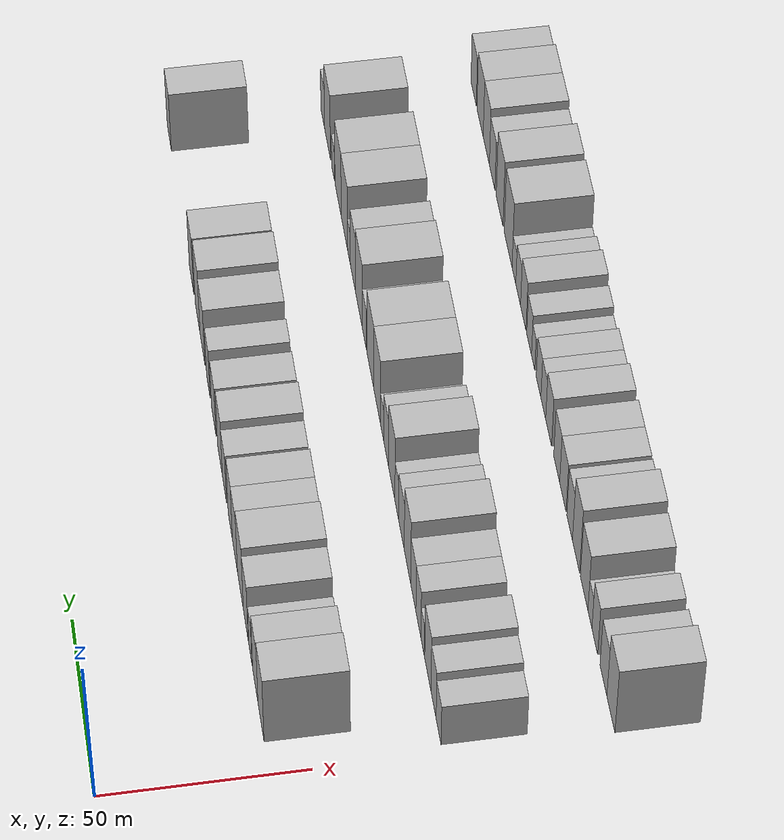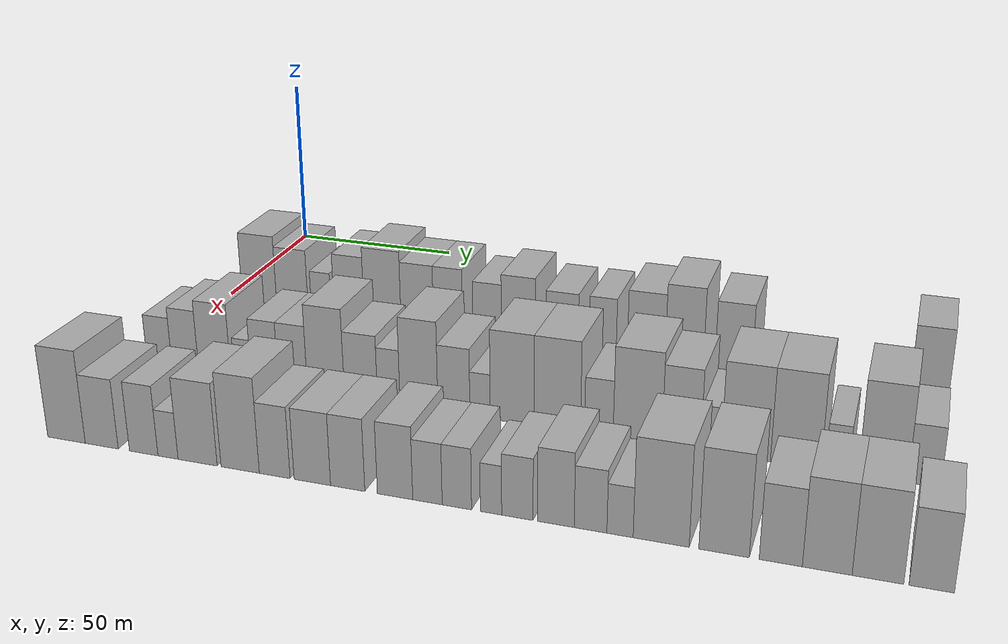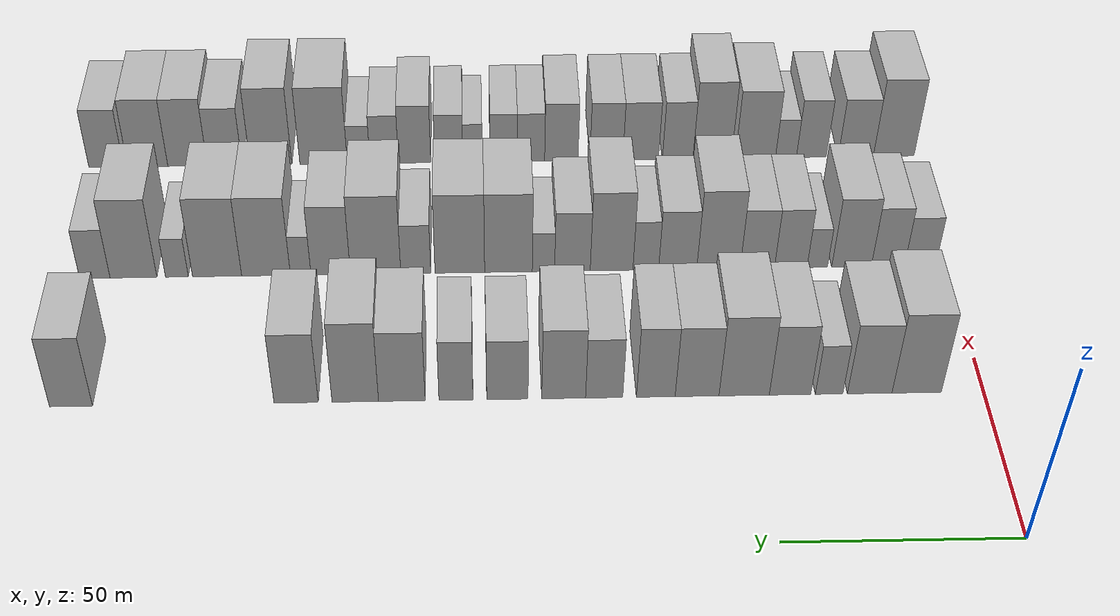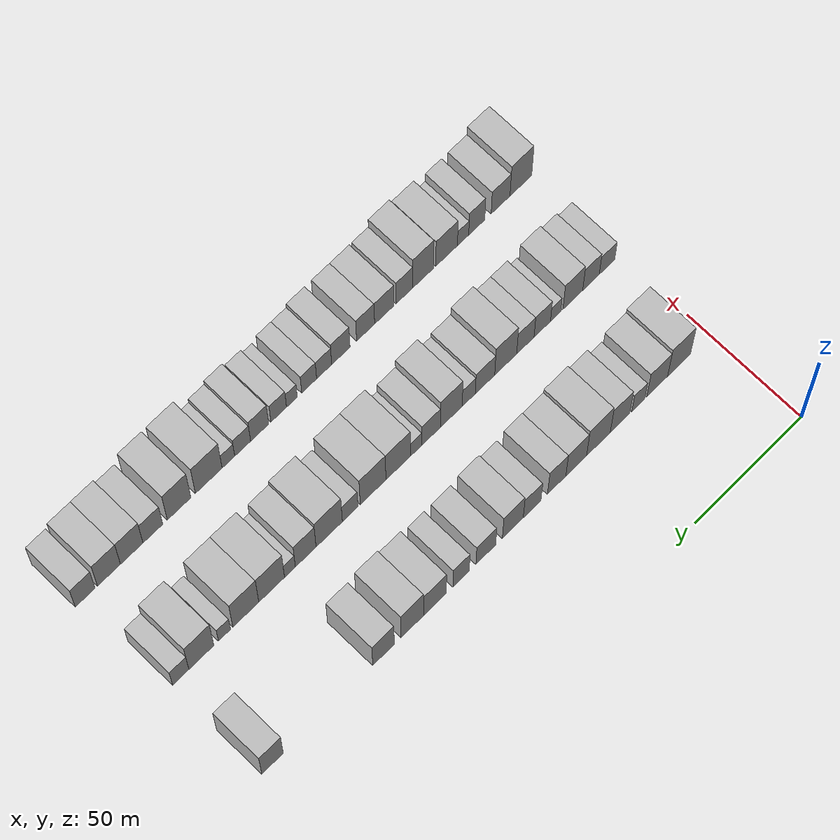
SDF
<sdf version="1.6">
 <world name="default">
  <model name="building_42">
   <static>1</static>
   <pose>50.0000 14.6597 0 0.000000 0.000000 0.000000</pose>
   <link name="link">
    <pose>0 0 12.00 0 0 0</pose>
    <collision name="collision"><geometry><box><size>20.0000 10.8217 24.0000</size></box></geometry></collision>
    <visual name="visual">
     <cast_shadows>0</cast_shadows>
     <geometry><box><size>20.0000 10.8217 24.0000</size></box></geometry>
     <material>
      <script>
       <uri>model://HANNAS_wall/materials/scripts</uri>
       <uri>model://HANNAS_wall/materials/textures</uri>
       <name>vrc/HANNAS_wall</name>
      </script>
     </material>
    </visual>
   </link>
  </model>
  <model name="building_43">
   <static>1</static>
   <pose>50.0000 24.9579 0 0.000000 0.000000 0.000000</pose>
   <link name="link">
    <pose>0 0 10.50 0 0 0</pose>
    <collision name="collision"><geometry><box><size>20.0000 9.7747 21.0000</size></box></geometry></collision>
    <visual name="visual">
     <cast_shadows>0</cast_shadows>
     <geometry><box><size>20.0000 9.7747 21.0000</size></box></geometry>
     <material>
      <script>
       <uri>model://HANNAS_wall/materials/scripts</uri>
       <uri>model://HANNAS_wall/materials/textures</uri>
       <name>vrc/HANNAS_wall</name>
      </script>
     </material>
    </visual>
   </link>
  </model>
  <model name="building_44">
   <static>1</static>
   <pose>50.0000 33.8572 0 0.000000 0.000000 0.000000</pose>
   <link name="link">
    <pose>0 0 7.50 0 0 0</pose>
    <collision name="collision"><geometry><box><size>20.0000 6.0239 15.0000</size></box></geometry></collision>
    <visual name="visual">
     <cast_shadows>0</cast_shadows>
     <geometry><box><size>20.0000 6.0239 15.0000</size></box></geometry>
     <material>
      <script>
       <uri>model://HANNAS_wall/materials/scripts</uri>
       <uri>model://HANNAS_wall/materials/textures</uri>
       <name>vrc/HANNAS_wall</name>
      </script>
     </material>
    </visual>
   </link>
  </model>
  <model name="building_45">
   <static>1</static>
   <pose>50.0000 42.4063 0 0.000000 0.000000 0.000000</pose>
   <link name="link">
    <pose>0 0 10.50 0 0 0</pose>
    <collision name="collision"><geometry><box><size>20.0000 9.0743 21.0000</size></box></geometry></collision>
    <visual name="visual">
     <cast_shadows>0</cast_shadows>
     <geometry><box><size>20.0000 9.0743 21.0000</size></box></geometry>
     <material>
      <script>
       <uri>model://HANNAS_wall/materials/scripts</uri>
       <uri>model://HANNAS_wall/materials/textures</uri>
       <name>vrc/HANNAS_wall</name>
      </script>
     </material>
    </visual>
   </link>
  </model>
  <model name="building_46">
   <static>1</static>
   <pose>50.0000 52.4457 0 0.000000 0.000000 0.000000</pose>
   <link name="link">
    <pose>0 0 12.00 0 0 0</pose>
    <collision name="collision"><geometry><box><size>20.0000 11.0043 24.0000</size></box></geometry></collision>
    <visual name="visual">
     <cast_shadows>0</cast_shadows>
     <geometry><box><size>20.0000 11.0043 24.0000</size></box></geometry>
     <material>
      <script>
       <uri>model://HANNAS_wall/materials/scripts</uri>
       <uri>model://HANNAS_wall/materials/textures</uri>
       <name>vrc/HANNAS_wall</name>
      </script>
     </material>
    </visual>
   </link>
  </model>
  <model name="building_47">
   <static>1</static>
   <pose>50.0000 62.7389 0 0.000000 0.000000 0.000000</pose>
   <link name="link">
    <pose>0 0 10.50 0 0 0</pose>
    <collision name="collision"><geometry><box><size>20.0000 9.5821 21.0000</size></box></geometry></collision>
    <visual name="visual">
     <cast_shadows>0</cast_shadows>
     <geometry><box><size>20.0000 9.5821 21.0000</size></box></geometry>
     <material>
      <script>
       <uri>model://HANNAS_wall/materials/scripts</uri>
       <uri>model://HANNAS_wall/materials/textures</uri>
       <name>vrc/HANNAS_wall</name>
      </script>
     </material>
    </visual>
   </link>
  </model>
  <model name="building_48">
   <static>1</static>
   <pose>50.0000 71.7521 0 0.000000 0.000000 0.000000</pose>
   <link name="link">
    <pose>0 0 10.50 0 0 0</pose>
    <collision name="collision"><geometry><box><size>20.0000 8.4444 21.0000</size></box></geometry></collision>
    <visual name="visual">
     <cast_shadows>0</cast_shadows>
     <geometry><box><size>20.0000 8.4444 21.0000</size></box></geometry>
     <material>
      <script>
       <uri>model://HANNAS_wall/materials/scripts</uri>
       <uri>model://HANNAS_wall/materials/textures</uri>
       <name>vrc/HANNAS_wall</name>
      </script>
     </material>
    </visual>
   </link>
  </model>
  <model name="building_49">
   <static>1</static>
   <pose>50.0000 83.0258 0 0.000000 0.000000 0.000000</pose>
   <link name="link">
    <pose>0 0 9.00 0 0 0</pose>
    <collision name="collision"><geometry><box><size>20.0000 8.1031 18.0000</size></box></geometry></collision>
    <visual name="visual">
     <cast_shadows>0</cast_shadows>
     <geometry><box><size>20.0000 8.1031 18.0000</size></box></geometry>
     <material>
      <script>
       <uri>model://HANNAS_wall/materials/scripts</uri>
       <uri>model://HANNAS_wall/materials/textures</uri>
       <name>vrc/HANNAS_wall</name>
      </script>
     </material>
    </visual>
   </link>
  </model>
  <model name="building_50">
   <static>1</static>
   <pose>50.0000 91.8477 0 0.000000 0.000000 0.000000</pose>
   <link name="link">
    <pose>0 0 10.50 0 0 0</pose>
    <collision name="collision"><geometry><box><size>20.0000 9.5407 21.0000</size></box></geometry></collision>
    <visual name="visual">
     <cast_shadows>0</cast_shadows>
     <geometry><box><size>20.0000 9.5407 21.0000</size></box></geometry>
     <material>
      <script>
       <uri>model://HANNAS_wall/materials/scripts</uri>
       <uri>model://HANNAS_wall/materials/textures</uri>
       <name>vrc/HANNAS_wall</name>
      </script>
     </material>
    </visual>
   </link>
  </model>
  <model name="building_51">
   <static>1</static>
   <pose>50.0000 104.1071 0 0.000000 0.000000 0.000000</pose>
   <link name="link">
    <pose>0 0 9.00 0 0 0</pose>
    <collision name="collision"><geometry><box><size>20.0000 8.9781 18.0000</size></box></geometry></collision>
    <visual name="visual">
     <cast_shadows>0</cast_shadows>
     <geometry><box><size>20.0000 8.9781 18.0000</size></box></geometry>
     <material>
      <script>
       <uri>model://HANNAS_wall/materials/scripts</uri>
       <uri>model://HANNAS_wall/materials/textures</uri>
       <name>vrc/HANNAS_wall</name>
      </script>
     </material>
    </visual>
   </link>
  </model>
  <model name="building_52">
   <static>1</static>
   <pose>50.0000 115.2909 0 0.000000 0.000000 0.000000</pose>
   <link name="link">
    <pose>0 0 9.00 0 0 0</pose>
    <collision name="collision"><geometry><box><size>20.0000 7.3895 18.0000</size></box></geometry></collision>
    <visual name="visual">
     <cast_shadows>0</cast_shadows>
     <geometry><box><size>20.0000 7.3895 18.0000</size></box></geometry>
     <material>
      <script>
       <uri>model://HANNAS_wall/materials/scripts</uri>
       <uri>model://HANNAS_wall/materials/textures</uri>
       <name>vrc/HANNAS_wall</name>
      </script>
     </material>
    </visual>
   </link>
  </model>
  <model name="building_53">
   <static>1</static>
   <pose>50.0000 127.0542 0 0.000000 0.000000 0.000000</pose>
   <link name="link">
    <pose>0 0 10.50 0 0 0</pose>
    <collision name="collision"><geometry><box><size>20.0000 10.1372 21.0000</size></box></geometry></collision>
    <visual name="visual">
     <cast_shadows>0</cast_shadows>
     <geometry><box><size>20.0000 10.1372 21.0000</size></box></geometry>
     <material>
      <script>
       <uri>model://HANNAS_wall/materials/scripts</uri>
       <uri>model://HANNAS_wall/materials/textures</uri>
       <name>vrc/HANNAS_wall</name>
      </script>
     </material>
    </visual>
   </link>
  </model>
  <model name="building_54">
   <static>1</static>
   <pose>50.0000 137.1678 0 0.000000 0.000000 0.000000</pose>
   <link name="link">
    <pose>0 0 12.00 0 0 0</pose>
    <collision name="collision"><geometry><box><size>20.0000 10.0899 24.0000</size></box></geometry></collision>
    <visual name="visual">
     <cast_shadows>0</cast_shadows>
     <geometry><box><size>20.0000 10.0899 24.0000</size></box></geometry>
     <material>
      <script>
       <uri>model://HANNAS_wall/materials/scripts</uri>
       <uri>model://HANNAS_wall/materials/textures</uri>
       <name>vrc/HANNAS_wall</name>
      </script>
     </material>
    </visual>
   </link>
  </model>
  <model name="building_55">
   <static>1</static>
   <pose>50.0000 150.0055 0 0.000000 0.000000 0.000000</pose>
   <link name="link">
    <pose>0 0 10.50 0 0 0</pose>
    <collision name="collision"><geometry><box><size>20.0000 9.5855 21.0000</size></box></geometry></collision>
    <visual name="visual">
     <cast_shadows>0</cast_shadows>
     <geometry><box><size>20.0000 9.5855 21.0000</size></box></geometry>
     <material>
      <script>
       <uri>model://HANNAS_wall/materials/scripts</uri>
       <uri>model://HANNAS_wall/materials/textures</uri>
       <name>vrc/HANNAS_wall</name>
      </script>
     </material>
    </visual>
   </link>
  </model>
  <model name="building_56">
   <static>1</static>
   <pose>50.0000 198.7421 0 0.000000 0.000000 0.000000</pose>
   <link name="link">
    <pose>0 0 10.50 0 0 0</pose>
    <collision name="collision"><geometry><box><size>20.0000 9.2959 21.0000</size></box></geometry></collision>
    <visual name="visual">
     <cast_shadows>0</cast_shadows>
     <geometry><box><size>20.0000 9.2959 21.0000</size></box></geometry>
     <material>
      <script>
       <uri>model://HANNAS_wall/materials/scripts</uri>
       <uri>model://HANNAS_wall/materials/textures</uri>
       <name>vrc/HANNAS_wall</name>
      </script>
     </material>
    </visual>
   </link>
  </model>
  <model name="building_117">
   <static>1</static>
   <pose>90.0000 6.2179 0 0.000000 0.000000 0.000000</pose>
   <link name="link">
    <pose>0 0 7.50 0 0 0</pose>
    <collision name="collision"><geometry><box><size>20.0000 7.3469 15.0000</size></box></geometry></collision>
    <visual name="visual">
     <cast_shadows>0</cast_shadows>
     <geometry><box><size>20.0000 7.3469 15.0000</size></box></geometry>
     <material>
      <script>
       <uri>model://HANNAS_wall/materials/scripts</uri>
       <uri>model://HANNAS_wall/materials/textures</uri>
       <name>vrc/HANNAS_wall</name>
      </script>
     </material>
    </visual>
   </link>
  </model>
  <model name="building_118">
   <static>1</static>
   <pose>90.0000 13.7996 0 0.000000 0.000000 0.000000</pose>
   <link name="link">
    <pose>0 0 9.00 0 0 0</pose>
    <collision name="collision"><geometry><box><size>20.0000 7.8166 18.0000</size></box></geometry></collision>
    <visual name="visual">
     <cast_shadows>0</cast_shadows>
     <geometry><box><size>20.0000 7.8166 18.0000</size></box></geometry>
     <material>
      <script>
       <uri>model://HANNAS_wall/materials/scripts</uri>
       <uri>model://HANNAS_wall/materials/textures</uri>
       <name>vrc/HANNAS_wall</name>
      </script>
     </material>
    </visual>
   </link>
  </model>
  <model name="building_119">
   <static>1</static>
   <pose>90.0000 22.3763 0 0.000000 0.000000 0.000000</pose>
   <link name="link">
    <pose>0 0 10.50 0 0 0</pose>
    <collision name="collision"><geometry><box><size>20.0000 9.3366 21.0000</size></box></geometry></collision>
    <visual name="visual">
     <cast_shadows>0</cast_shadows>
     <geometry><box><size>20.0000 9.3366 21.0000</size></box></geometry>
     <material>
      <script>
       <uri>model://HANNAS_wall/materials/scripts</uri>
       <uri>model://HANNAS_wall/materials/textures</uri>
       <name>vrc/HANNAS_wall</name>
      </script>
     </material>
    </visual>
   </link>
  </model>
  <model name="building_120">
   <static>1</static>
   <pose>90.0000 30.4526 0 0.000000 0.000000 0.000000</pose>
   <link name="link">
    <pose>0 0 6.00 0 0 0</pose>
    <collision name="collision"><geometry><box><size>20.0000 4.8161 12.0000</size></box></geometry></collision>
    <visual name="visual">
     <cast_shadows>0</cast_shadows>
     <geometry><box><size>20.0000 4.8161 12.0000</size></box></geometry>
     <material>
      <script>
       <uri>model://HANNAS_wall/materials/scripts</uri>
       <uri>model://HANNAS_wall/materials/textures</uri>
       <name>vrc/HANNAS_wall</name>
      </script>
     </material>
    </visual>
   </link>
  </model>
  <model name="building_121">
   <static>1</static>
   <pose>90.0000 36.6911 0 0.000000 0.000000 0.000000</pose>
   <link name="link">
    <pose>0 0 9.00 0 0 0</pose>
    <collision name="collision"><geometry><box><size>20.0000 7.6609 18.0000</size></box></geometry></collision>
    <visual name="visual">
     <cast_shadows>0</cast_shadows>
     <geometry><box><size>20.0000 7.6609 18.0000</size></box></geometry>
     <material>
      <script>
       <uri>model://HANNAS_wall/materials/scripts</uri>
       <uri>model://HANNAS_wall/materials/textures</uri>
       <name>vrc/HANNAS_wall</name>
      </script>
     </material>
    </visual>
   </link>
  </model>
  <model name="building_122">
   <static>1</static>
   <pose>90.0000 44.5673 0 0.000000 0.000000 0.000000</pose>
   <link name="link">
    <pose>0 0 9.00 0 0 0</pose>
    <collision name="collision"><geometry><box><size>20.0000 8.0916 18.0000</size></box></geometry></collision>
    <visual name="visual">
     <cast_shadows>0</cast_shadows>
     <geometry><box><size>20.0000 8.0916 18.0000</size></box></geometry>
     <material>
      <script>
       <uri>model://HANNAS_wall/materials/scripts</uri>
       <uri>model://HANNAS_wall/materials/textures</uri>
       <name>vrc/HANNAS_wall</name>
      </script>
     </material>
    </visual>
   </link>
  </model>
  <model name="building_123">
   <static>1</static>
   <pose>90.0000 53.7127 0 0.000000 0.000000 0.000000</pose>
   <link name="link">
    <pose>0 0 12.00 0 0 0</pose>
    <collision name="collision"><geometry><box><size>20.0000 10.1992 24.0000</size></box></geometry></collision>
    <visual name="visual">
     <cast_shadows>0</cast_shadows>
     <geometry><box><size>20.0000 10.1992 24.0000</size></box></geometry>
     <material>
      <script>
       <uri>model://HANNAS_wall/materials/scripts</uri>
       <uri>model://HANNAS_wall/materials/textures</uri>
       <name>vrc/HANNAS_wall</name>
      </script>
     </material>
    </visual>
   </link>
  </model>
  <model name="building_124">
   <static>1</static>
   <pose>90.0000 63.2934 0 0.000000 0.000000 0.000000</pose>
   <link name="link">
    <pose>0 0 9.00 0 0 0</pose>
    <collision name="collision"><geometry><box><size>20.0000 8.9622 18.0000</size></box></geometry></collision>
    <visual name="visual">
     <cast_shadows>0</cast_shadows>
     <geometry><box><size>20.0000 8.9622 18.0000</size></box></geometry>
     <material>
      <script>
       <uri>model://HANNAS_wall/materials/scripts</uri>
       <uri>model://HANNAS_wall/materials/textures</uri>
       <name>vrc/HANNAS_wall</name>
      </script>
     </material>
    </visual>
   </link>
  </model>
  <model name="building_125">
   <static>1</static>
   <pose>90.0000 70.7899 0 0.000000 0.000000 0.000000</pose>
   <link name="link">
    <pose>0 0 7.50 0 0 0</pose>
    <collision name="collision"><geometry><box><size>20.0000 6.0307 15.0000</size></box></geometry></collision>
    <visual name="visual">
     <cast_shadows>0</cast_shadows>
     <geometry><box><size>20.0000 6.0307 15.0000</size></box></geometry>
     <material>
      <script>
       <uri>model://HANNAS_wall/materials/scripts</uri>
       <uri>model://HANNAS_wall/materials/textures</uri>
       <name>vrc/HANNAS_wall</name>
      </script>
     </material>
    </visual>
   </link>
  </model>
  <model name="building_126">
   <static>1</static>
   <pose>90.0000 78.8152 0 0.000000 0.000000 0.000000</pose>
   <link name="link">
    <pose>0 0 12.00 0 0 0</pose>
    <collision name="collision"><geometry><box><size>20.0000 10.0199 24.0000</size></box></geometry></collision>
    <visual name="visual">
     <cast_shadows>0</cast_shadows>
     <geometry><box><size>20.0000 10.0199 24.0000</size></box></geometry>
     <material>
      <script>
       <uri>model://HANNAS_wall/materials/scripts</uri>
       <uri>model://HANNAS_wall/materials/textures</uri>
       <name>vrc/HANNAS_wall</name>
      </script>
     </material>
    </visual>
   </link>
  </model>
  <model name="building_127">
   <static>1</static>
   <pose>90.0000 88.0000 0 0.000000 0.000000 0.000000</pose>
   <link name="link">
    <pose>0 0 9.00 0 0 0</pose>
    <collision name="collision"><geometry><box><size>20.0000 8.3497 18.0000</size></box></geometry></collision>
    <visual name="visual">
     <cast_shadows>0</cast_shadows>
     <geometry><box><size>20.0000 8.3497 18.0000</size></box></geometry>
     <material>
      <script>
       <uri>model://HANNAS_wall/materials/scripts</uri>
       <uri>model://HANNAS_wall/materials/textures</uri>
       <name>vrc/HANNAS_wall</name>
      </script>
     </material>
    </visual>
   </link>
  </model>
  <model name="building_128">
   <static>1</static>
   <pose>90.0000 94.7906 0 0.000000 0.000000 0.000000</pose>
   <link name="link">
    <pose>0 0 6.00 0 0 0</pose>
    <collision name="collision"><geometry><box><size>20.0000 5.2316 12.0000</size></box></geometry></collision>
    <visual name="visual">
     <cast_shadows>0</cast_shadows>
     <geometry><box><size>20.0000 5.2316 12.0000</size></box></geometry>
     <material>
      <script>
       <uri>model://HANNAS_wall/materials/scripts</uri>
       <uri>model://HANNAS_wall/materials/textures</uri>
       <name>vrc/HANNAS_wall</name>
      </script>
     </material>
    </visual>
   </link>
  </model>
  <model name="building_129">
   <static>1</static>
   <pose>90.0000 102.9821 0 0.000000 0.000000 0.000000</pose>
   <link name="link">
    <pose>0 0 12.00 0 0 0</pose>
    <collision name="collision"><geometry><box><size>20.0000 11.1512 24.0000</size></box></geometry></collision>
    <visual name="visual">
     <cast_shadows>0</cast_shadows>
     <geometry><box><size>20.0000 11.1512 24.0000</size></box></geometry>
     <material>
      <script>
       <uri>model://HANNAS_wall/materials/scripts</uri>
       <uri>model://HANNAS_wall/materials/textures</uri>
       <name>vrc/HANNAS_wall</name>
      </script>
     </material>
    </visual>
   </link>
  </model>
  <model name="building_130">
   <static>1</static>
   <pose>90.0000 114.3607 0 0.000000 0.000000 0.000000</pose>
   <link name="link">
    <pose>0 0 12.00 0 0 0</pose>
    <collision name="collision"><geometry><box><size>20.0000 11.6062 24.0000</size></box></geometry></collision>
    <visual name="visual">
     <cast_shadows>0</cast_shadows>
     <geometry><box><size>20.0000 11.6062 24.0000</size></box></geometry>
     <material>
      <script>
       <uri>model://HANNAS_wall/materials/scripts</uri>
       <uri>model://HANNAS_wall/materials/textures</uri>
       <name>vrc/HANNAS_wall</name>
      </script>
     </material>
    </visual>
   </link>
  </model>
  <model name="building_131">
   <static>1</static>
   <pose>90.0000 124.6672 0 0.000000 0.000000 0.000000</pose>
   <link name="link">
    <pose>0 0 7.50 0 0 0</pose>
    <collision name="collision"><geometry><box><size>20.0000 7.0067 15.0000</size></box></geometry></collision>
    <visual name="visual">
     <cast_shadows>0</cast_shadows>
     <geometry><box><size>20.0000 7.0067 15.0000</size></box></geometry>
     <material>
      <script>
       <uri>model://HANNAS_wall/materials/scripts</uri>
       <uri>model://HANNAS_wall/materials/textures</uri>
       <name>vrc/HANNAS_wall</name>
      </script>
     </material>
    </visual>
   </link>
  </model>
  <model name="building_132">
   <static>1</static>
   <pose>90.0000 134.0580 0 0.000000 0.000000 0.000000</pose>
   <link name="link">
    <pose>0 0 12.00 0 0 0</pose>
    <collision name="collision"><geometry><box><size>20.0000 11.7749 24.0000</size></box></geometry></collision>
    <visual name="visual">
     <cast_shadows>0</cast_shadows>
     <geometry><box><size>20.0000 11.7749 24.0000</size></box></geometry>
     <material>
      <script>
       <uri>model://HANNAS_wall/materials/scripts</uri>
       <uri>model://HANNAS_wall/materials/textures</uri>
       <name>vrc/HANNAS_wall</name>
      </script>
     </material>
    </visual>
   </link>
  </model>
  <model name="building_133">
   <static>1</static>
   <pose>90.0000 144.5445 0 0.000000 0.000000 0.000000</pose>
   <link name="link">
    <pose>0 0 10.50 0 0 0</pose>
    <collision name="collision"><geometry><box><size>20.0000 9.1982 21.0000</size></box></geometry></collision>
    <visual name="visual">
     <cast_shadows>0</cast_shadows>
     <geometry><box><size>20.0000 9.1982 21.0000</size></box></geometry>
     <material>
      <script>
       <uri>model://HANNAS_wall/materials/scripts</uri>
       <uri>model://HANNAS_wall/materials/textures</uri>
       <name>vrc/HANNAS_wall</name>
      </script>
     </material>
    </visual>
   </link>
  </model>
  <model name="building_134">
   <static>1</static>
   <pose>90.0000 151.5437 0 0.000000 0.000000 0.000000</pose>
   <link name="link">
    <pose>0 0 6.00 0 0 0</pose>
    <collision name="collision"><geometry><box><size>20.0000 4.8003 12.0000</size></box></geometry></collision>
    <visual name="visual">
     <cast_shadows>0</cast_shadows>
     <geometry><box><size>20.0000 4.8003 12.0000</size></box></geometry>
     <material>
      <script>
       <uri>model://HANNAS_wall/materials/scripts</uri>
       <uri>model://HANNAS_wall/materials/textures</uri>
       <name>vrc/HANNAS_wall</name>
      </script>
     </material>
    </visual>
   </link>
  </model>
  <model name="building_135">
   <static>1</static>
   <pose>90.0000 159.6346 0 0.000000 0.000000 0.000000</pose>
   <link name="link">
    <pose>0 0 12.00 0 0 0</pose>
    <collision name="collision"><geometry><box><size>20.0000 11.3816 24.0000</size></box></geometry></collision>
    <visual name="visual">
     <cast_shadows>0</cast_shadows>
     <geometry><box><size>20.0000 11.3816 24.0000</size></box></geometry>
     <material>
      <script>
       <uri>model://HANNAS_wall/materials/scripts</uri>
       <uri>model://HANNAS_wall/materials/textures</uri>
       <name>vrc/HANNAS_wall</name>
      </script>
     </material>
    </visual>
   </link>
  </model>
  <model name="building_136">
   <static>1</static>
   <pose>90.0000 171.0382 0 0.000000 0.000000 0.000000</pose>
   <link name="link">
    <pose>0 0 12.00 0 0 0</pose>
    <collision name="collision"><geometry><box><size>20.0000 11.4255 24.0000</size></box></geometry></collision>
    <visual name="visual">
     <cast_shadows>0</cast_shadows>
     <geometry><box><size>20.0000 11.4255 24.0000</size></box></geometry>
     <material>
      <script>
       <uri>model://HANNAS_wall/materials/scripts</uri>
       <uri>model://HANNAS_wall/materials/textures</uri>
       <name>vrc/HANNAS_wall</name>
      </script>
     </material>
    </visual>
   </link>
  </model>
  <model name="building_137">
   <static>1</static>
   <pose>90.0000 180.4086 0 0.000000 0.000000 0.000000</pose>
   <link name="link">
    <pose>0 0 6.00 0 0 0</pose>
    <collision name="collision"><geometry><box><size>20.0000 5.3153 12.0000</size></box></geometry></collision>
    <visual name="visual">
     <cast_shadows>0</cast_shadows>
     <geometry><box><size>20.0000 5.3153 12.0000</size></box></geometry>
     <material>
      <script>
       <uri>model://HANNAS_wall/materials/scripts</uri>
       <uri>model://HANNAS_wall/materials/textures</uri>
       <name>vrc/HANNAS_wall</name>
      </script>
     </material>
    </visual>
   </link>
  </model>
  <model name="building_138">
   <static>1</static>
   <pose>90.0000 190.5158 0 0.000000 0.000000 0.000000</pose>
   <link name="link">
    <pose>0 0 12.00 0 0 0</pose>
    <collision name="collision"><geometry><box><size>20.0000 10.8992 24.0000</size></box></geometry></collision>
    <visual name="visual">
     <cast_shadows>0</cast_shadows>
     <geometry><box><size>20.0000 10.8992 24.0000</size></box></geometry>
     <material>
      <script>
       <uri>model://HANNAS_wall/materials/scripts</uri>
       <uri>model://HANNAS_wall/materials/textures</uri>
       <name>vrc/HANNAS_wall</name>
      </script>
     </material>
    </visual>
   </link>
  </model>
  <model name="building_139">
   <static>1</static>
   <pose>90.0000 199.5077 0 0.000000 0.000000 0.000000</pose>
   <link name="link">
    <pose>0 0 7.50 0 0 0</pose>
    <collision name="collision"><geometry><box><size>20.0000 7.0845 15.0000</size></box></geometry></collision>
    <visual name="visual">
     <cast_shadows>0</cast_shadows>
     <geometry><box><size>20.0000 7.0845 15.0000</size></box></geometry>
     <material>
      <script>
       <uri>model://HANNAS_wall/materials/scripts</uri>
       <uri>model://HANNAS_wall/materials/textures</uri>
       <name>vrc/HANNAS_wall</name>
      </script>
     </material>
    </visual>
   </link>
  </model>
  <model name="building_203">
   <static>1</static>
   <pose>130.0000 5.1606 0 0.000000 0.000000 0.000000</pose>
   <link name="link">
    <pose>0 0 12.00 0 0 0</pose>
    <collision name="collision"><geometry><box><size>20.0000 10.2754 24.0000</size></box></geometry></collision>
    <visual name="visual">
     <cast_shadows>0</cast_shadows>
     <geometry><box><size>20.0000 10.2754 24.0000</size></box></geometry>
     <material>
      <script>
       <uri>model://HANNAS_wall/materials/scripts</uri>
       <uri>model://HANNAS_wall/materials/textures</uri>
       <name>vrc/HANNAS_wall</name>
      </script>
     </material>
    </visual>
   </link>
  </model>
  <model name="building_204">
   <static>1</static>
   <pose>130.0000 14.7429 0 0.000000 0.000000 0.000000</pose>
   <link name="link">
    <pose>0 0 9.00 0 0 0</pose>
    <collision name="collision"><geometry><box><size>20.0000 8.8893 18.0000</size></box></geometry></collision>
    <visual name="visual">
     <cast_shadows>0</cast_shadows>
     <geometry><box><size>20.0000 8.8893 18.0000</size></box></geometry>
     <material>
      <script>
       <uri>model://HANNAS_wall/materials/scripts</uri>
       <uri>model://HANNAS_wall/materials/textures</uri>
       <name>vrc/HANNAS_wall</name>
      </script>
     </material>
    </visual>
   </link>
  </model>
  <model name="building_205">
   <static>1</static>
   <pose>130.0000 25.9527 0 0.000000 0.000000 0.000000</pose>
   <link name="link">
    <pose>0 0 9.00 0 0 0</pose>
    <collision name="collision"><geometry><box><size>20.0000 7.5304 18.0000</size></box></geometry></collision>
    <visual name="visual">
     <cast_shadows>0</cast_shadows>
     <geometry><box><size>20.0000 7.5304 18.0000</size></box></geometry>
     <material>
      <script>
       <uri>model://HANNAS_wall/materials/scripts</uri>
       <uri>model://HANNAS_wall/materials/textures</uri>
       <name>vrc/HANNAS_wall</name>
      </script>
     </material>
    </visual>
   </link>
  </model>
  <model name="building_206">
   <static>1</static>
   <pose>130.0000 32.3491 0 0.000000 0.000000 0.000000</pose>
   <link name="link">
    <pose>0 0 6.00 0 0 0</pose>
    <collision name="collision"><geometry><box><size>20.0000 5.2622 12.0000</size></box></geometry></collision>
    <visual name="visual">
     <cast_shadows>0</cast_shadows>
     <geometry><box><size>20.0000 5.2622 12.0000</size></box></geometry>
     <material>
      <script>
       <uri>model://HANNAS_wall/materials/scripts</uri>
       <uri>model://HANNAS_wall/materials/textures</uri>
       <name>vrc/HANNAS_wall</name>
      </script>
     </material>
    </visual>
   </link>
  </model>
  <model name="building_207">
   <static>1</static>
   <pose>130.0000 40.0331 0 0.000000 0.000000 0.000000</pose>
   <link name="link">
    <pose>0 0 10.50 0 0 0</pose>
    <collision name="collision"><geometry><box><size>20.0000 10.1059 21.0000</size></box></geometry></collision>
    <visual name="visual">
     <cast_shadows>0</cast_shadows>
     <geometry><box><size>20.0000 10.1059 21.0000</size></box></geometry>
     <material>
      <script>
       <uri>model://HANNAS_wall/materials/scripts</uri>
       <uri>model://HANNAS_wall/materials/textures</uri>
       <name>vrc/HANNAS_wall</name>
      </script>
     </material>
    </visual>
   </link>
  </model>
  <model name="building_208">
   <static>1</static>
   <pose>130.0000 50.9304 0 0.000000 0.000000 0.000000</pose>
   <link name="link">
    <pose>0 0 12.00 0 0 0</pose>
    <collision name="collision"><geometry><box><size>20.0000 9.6887 24.0000</size></box></geometry></collision>
    <visual name="visual">
     <cast_shadows>0</cast_shadows>
     <geometry><box><size>20.0000 9.6887 24.0000</size></box></geometry>
     <material>
      <script>
       <uri>model://HANNAS_wall/materials/scripts</uri>
       <uri>model://HANNAS_wall/materials/textures</uri>
       <name>vrc/HANNAS_wall</name>
      </script>
     </material>
    </visual>
   </link>
  </model>
  <model name="building_209">
   <static>1</static>
   <pose>130.0000 59.6155 0 0.000000 0.000000 0.000000</pose>
   <link name="link">
    <pose>0 0 9.00 0 0 0</pose>
    <collision name="collision"><geometry><box><size>20.0000 7.6816 18.0000</size></box></geometry></collision>
    <visual name="visual">
     <cast_shadows>0</cast_shadows>
     <geometry><box><size>20.0000 7.6816 18.0000</size></box></geometry>
     <material>
      <script>
       <uri>model://HANNAS_wall/materials/scripts</uri>
       <uri>model://HANNAS_wall/materials/textures</uri>
       <name>vrc/HANNAS_wall</name>
      </script>
     </material>
    </visual>
   </link>
  </model>
  <model name="building_210">
   <static>1</static>
   <pose>130.0000 68.9196 0 0.000000 0.000000 0.000000</pose>
   <link name="link">
    <pose>0 0 9.00 0 0 0</pose>
    <collision name="collision"><geometry><box><size>20.0000 8.9265 18.0000</size></box></geometry></collision>
    <visual name="visual">
     <cast_shadows>0</cast_shadows>
     <geometry><box><size>20.0000 8.9265 18.0000</size></box></geometry>
     <material>
      <script>
       <uri>model://HANNAS_wall/materials/scripts</uri>
       <uri>model://HANNAS_wall/materials/textures</uri>
       <name>vrc/HANNAS_wall</name>
      </script>
     </material>
    </visual>
   </link>
  </model>
  <model name="building_211">
   <static>1</static>
   <pose>130.0000 77.5230 0 0.000000 0.000000 0.000000</pose>
   <link name="link">
    <pose>0 0 9.00 0 0 0</pose>
    <collision name="collision"><geometry><box><size>20.0000 8.2803 18.0000</size></box></geometry></collision>
    <visual name="visual">
     <cast_shadows>0</cast_shadows>
     <geometry><box><size>20.0000 8.2803 18.0000</size></box></geometry>
     <material>
      <script>
       <uri>model://HANNAS_wall/materials/scripts</uri>
       <uri>model://HANNAS_wall/materials/textures</uri>
       <name>vrc/HANNAS_wall</name>
      </script>
     </material>
    </visual>
   </link>
  </model>
  <model name="building_212">
   <static>1</static>
   <pose>130.0000 88.8473 0 0.000000 0.000000 0.000000</pose>
   <link name="link">
    <pose>0 0 9.00 0 0 0</pose>
    <collision name="collision"><geometry><box><size>20.0000 8.3682 18.0000</size></box></geometry></collision>
    <visual name="visual">
     <cast_shadows>0</cast_shadows>
     <geometry><box><size>20.0000 8.3682 18.0000</size></box></geometry>
     <material>
      <script>
       <uri>model://HANNAS_wall/materials/scripts</uri>
       <uri>model://HANNAS_wall/materials/textures</uri>
       <name>vrc/HANNAS_wall</name>
      </script>
     </material>
    </visual>
   </link>
  </model>
  <model name="building_213">
   <static>1</static>
   <pose>130.0000 96.4643 0 0.000000 0.000000 0.000000</pose>
   <link name="link">
    <pose>0 0 7.50 0 0 0</pose>
    <collision name="collision"><geometry><box><size>20.0000 6.8658 15.0000</size></box></geometry></collision>
    <visual name="visual">
     <cast_shadows>0</cast_shadows>
     <geometry><box><size>20.0000 6.8658 15.0000</size></box></geometry>
     <material>
      <script>
       <uri>model://HANNAS_wall/materials/scripts</uri>
       <uri>model://HANNAS_wall/materials/textures</uri>
       <name>vrc/HANNAS_wall</name>
      </script>
     </material>
    </visual>
   </link>
  </model>
  <model name="building_214">
   <static>1</static>
   <pose>130.0000 103.2800 0 0.000000 0.000000 0.000000</pose>
   <link name="link">
    <pose>0 0 7.50 0 0 0</pose>
    <collision name="collision"><geometry><box><size>20.0000 6.7657 15.0000</size></box></geometry></collision>
    <visual name="visual">
     <cast_shadows>0</cast_shadows>
     <geometry><box><size>20.0000 6.7657 15.0000</size></box></geometry>
     <material>
      <script>
       <uri>model://HANNAS_wall/materials/scripts</uri>
       <uri>model://HANNAS_wall/materials/textures</uri>
       <name>vrc/HANNAS_wall</name>
      </script>
     </material>
    </visual>
   </link>
  </model>
  <model name="building_215">
   <static>1</static>
   <pose>130.0000 111.0894 0 0.000000 0.000000 0.000000</pose>
   <link name="link">
    <pose>0 0 6.00 0 0 0</pose>
    <collision name="collision"><geometry><box><size>20.0000 4.8532 12.0000</size></box></geometry></collision>
    <visual name="visual">
     <cast_shadows>0</cast_shadows>
     <geometry><box><size>20.0000 4.8532 12.0000</size></box></geometry>
     <material>
      <script>
       <uri>model://HANNAS_wall/materials/scripts</uri>
       <uri>model://HANNAS_wall/materials/textures</uri>
       <name>vrc/HANNAS_wall</name>
      </script>
     </material>
    </visual>
   </link>
  </model>
  <model name="building_216">
   <static>1</static>
   <pose>130.0000 117.0325 0 0.000000 0.000000 0.000000</pose>
   <link name="link">
    <pose>0 0 7.50 0 0 0</pose>
    <collision name="collision"><geometry><box><size>20.0000 7.0331 15.0000</size></box></geometry></collision>
    <visual name="visual">
     <cast_shadows>0</cast_shadows>
     <geometry><box><size>20.0000 7.0331 15.0000</size></box></geometry>
     <material>
      <script>
       <uri>model://HANNAS_wall/materials/scripts</uri>
       <uri>model://HANNAS_wall/materials/textures</uri>
       <name>vrc/HANNAS_wall</name>
      </script>
     </material>
    </visual>
   </link>
  </model>
  <model name="building_217">
   <static>1</static>
   <pose>130.0000 125.6019 0 0.000000 0.000000 0.000000</pose>
   <link name="link">
    <pose>0 0 9.00 0 0 0</pose>
    <collision name="collision"><geometry><box><size>20.0000 8.1056 18.0000</size></box></geometry></collision>
    <visual name="visual">
     <cast_shadows>0</cast_shadows>
     <geometry><box><size>20.0000 8.1056 18.0000</size></box></geometry>
     <material>
      <script>
       <uri>model://HANNAS_wall/materials/scripts</uri>
       <uri>model://HANNAS_wall/materials/textures</uri>
       <name>vrc/HANNAS_wall</name>
      </script>
     </material>
    </visual>
   </link>
  </model>
  <model name="building_218">
   <static>1</static>
   <pose>130.0000 133.2106 0 0.000000 0.000000 0.000000</pose>
   <link name="link">
    <pose>0 0 7.50 0 0 0</pose>
    <collision name="collision"><geometry><box><size>20.0000 7.1117 15.0000</size></box></geometry></collision>
    <visual name="visual">
     <cast_shadows>0</cast_shadows>
     <geometry><box><size>20.0000 7.1117 15.0000</size></box></geometry>
     <material>
      <script>
       <uri>model://HANNAS_wall/materials/scripts</uri>
       <uri>model://HANNAS_wall/materials/textures</uri>
       <name>vrc/HANNAS_wall</name>
      </script>
     </material>
    </visual>
   </link>
  </model>
  <model name="building_219">
   <static>1</static>
   <pose>130.0000 139.5916 0 0.000000 0.000000 0.000000</pose>
   <link name="link">
    <pose>0 0 6.00 0 0 0</pose>
    <collision name="collision"><geometry><box><size>20.0000 5.6502 12.0000</size></box></geometry></collision>
    <visual name="visual">
     <cast_shadows>0</cast_shadows>
     <geometry><box><size>20.0000 5.6502 12.0000</size></box></geometry>
     <material>
      <script>
       <uri>model://HANNAS_wall/materials/scripts</uri>
       <uri>model://HANNAS_wall/materials/textures</uri>
       <name>vrc/HANNAS_wall</name>
      </script>
     </material>
    </visual>
   </link>
  </model>
  <model name="building_220">
   <static>1</static>
   <pose>130.0000 148.3472 0 0.000000 0.000000 0.000000</pose>
   <link name="link">
    <pose>0 0 12.00 0 0 0</pose>
    <collision name="collision"><geometry><box><size>20.0000 11.8610 24.0000</size></box></geometry></collision>
    <visual name="visual">
     <cast_shadows>0</cast_shadows>
     <geometry><box><size>20.0000 11.8610 24.0000</size></box></geometry>
     <material>
      <script>
       <uri>model://HANNAS_wall/materials/scripts</uri>
       <uri>model://HANNAS_wall/materials/textures</uri>
       <name>vrc/HANNAS_wall</name>
      </script>
     </material>
    </visual>
   </link>
  </model>
  <model name="building_221">
   <static>1</static>
   <pose>130.0000 161.4853 0 0.000000 0.000000 0.000000</pose>
   <link name="link">
    <pose>0 0 12.00 0 0 0</pose>
    <collision name="collision"><geometry><box><size>20.0000 10.4152 24.0000</size></box></geometry></collision>
    <visual name="visual">
     <cast_shadows>0</cast_shadows>
     <geometry><box><size>20.0000 10.4152 24.0000</size></box></geometry>
     <material>
      <script>
       <uri>model://HANNAS_wall/materials/scripts</uri>
       <uri>model://HANNAS_wall/materials/textures</uri>
       <name>vrc/HANNAS_wall</name>
      </script>
     </material>
    </visual>
   </link>
  </model>
  <model name="building_222">
   <static>1</static>
   <pose>130.0000 173.0456 0 0.000000 0.000000 0.000000</pose>
   <link name="link">
    <pose>0 0 9.00 0 0 0</pose>
    <collision name="collision"><geometry><box><size>20.0000 8.7053 18.0000</size></box></geometry></collision>
    <visual name="visual">
     <cast_shadows>0</cast_shadows>
     <geometry><box><size>20.0000 8.7053 18.0000</size></box></geometry>
     <material>
      <script>
       <uri>model://HANNAS_wall/materials/scripts</uri>
       <uri>model://HANNAS_wall/materials/textures</uri>
       <name>vrc/HANNAS_wall</name>
      </script>
     </material>
    </visual>
   </link>
  </model>
  <model name="building_223">
   <static>1</static>
   <pose>130.0000 182.3191 0 0.000000 0.000000 0.000000</pose>
   <link name="link">
    <pose>0 0 10.50 0 0 0</pose>
    <collision name="collision"><geometry><box><size>20.0000 9.8416 21.0000</size></box></geometry></collision>
    <visual name="visual">
     <cast_shadows>0</cast_shadows>
     <geometry><box><size>20.0000 9.8416 21.0000</size></box></geometry>
     <material>
      <script>
       <uri>model://HANNAS_wall/materials/scripts</uri>
       <uri>model://HANNAS_wall/materials/textures</uri>
       <name>vrc/HANNAS_wall</name>
      </script>
     </material>
    </visual>
   </link>
  </model>
  <model name="building_224">
   <static>1</static>
   <pose>130.0000 192.2521 0 0.000000 0.000000 0.000000</pose>
   <link name="link">
    <pose>0 0 10.50 0 0 0</pose>
    <collision name="collision"><geometry><box><size>20.0000 10.0244 21.0000</size></box></geometry></collision>
    <visual name="visual">
     <cast_shadows>0</cast_shadows>
     <geometry><box><size>20.0000 10.0244 21.0000</size></box></geometry>
     <material>
      <script>
       <uri>model://HANNAS_wall/materials/scripts</uri>
       <uri>model://HANNAS_wall/materials/textures</uri>
       <name>vrc/HANNAS_wall</name>
      </script>
     </material>
    </visual>
   </link>
  </model>
  <model name="building_225">
   <static>1</static>
   <pose>130.0000 202.5820 0 0.000000 0.000000 0.000000</pose>
   <link name="link">
    <pose>0 0 9.00 0 0 0</pose>
    <collision name="collision"><geometry><box><size>20.0000 8.6353 18.0000</size></box></geometry></collision>
    <visual name="visual">
     <cast_shadows>0</cast_shadows>
     <geometry><box><size>20.0000 8.6353 18.0000</size></box></geometry>
     <material>
      <script>
       <uri>model://HANNAS_wall/materials/scripts</uri>
       <uri>model://HANNAS_wall/materials/textures</uri>
       <name>vrc/HANNAS_wall</name>
      </script>
     </material>
    </visual>
   </link>
  </model>
 </world>
</sdf>
